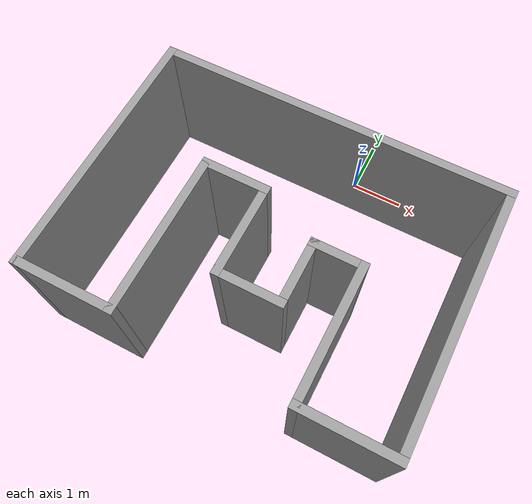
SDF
<?xml version='1.0'?>
<sdf version='1.7'>
  <model name='house1'>
    <pose>-0.545 -2.5575 0 0 -0 0</pose>
    <link name='Wall_0'>
      <collision name='Wall_0_Collision'>
        <geometry>
          <box>
            <size>4.75 0.15 2.5</size>
          </box>
        </geometry>
        <pose>0 0 1.25 0 -0 0</pose>
      </collision>
      <visual name='Wall_0_Visual'>
        <pose>0 0 1.25 0 -0 0</pose>
        <geometry>
          <box>
            <size>4.75 0.15 2.5</size>
          </box>
        </geometry>
        <material>
          <script>
            <uri>file://media/materials/scripts/gazebo.material</uri>
            <name>Gazebo/Grey</name>
          </script>
          <ambient>1 1 1 1</ambient>
        </material>
        <meta>
          <layer>0</layer>
        </meta>
      </visual>
      <pose>-3.175 -0.1825 0 0 -0 1.5708</pose>
    </link>
    <link name='Wall_1'>
      <collision name='Wall_1_Collision'>
        <geometry>
          <box>
            <size>6.5 0.15 2.5</size>
          </box>
        </geometry>
        <pose>0 0 1.25 0 -0 0</pose>
      </collision>
      <visual name='Wall_1_Visual'>
        <pose>0 0 1.25 0 -0 0</pose>
        <geometry>
          <box>
            <size>6.5 0.15 2.5</size>
          </box>
        </geometry>
        <material>
          <script>
            <uri>file://media/materials/scripts/gazebo.material</uri>
            <name>Gazebo/Grey</name>
          </script>
          <ambient>1 1 1 1</ambient>
        </material>
        <meta>
          <layer>0</layer>
        </meta>
      </visual>
      <pose>-0 2.1175 0 0 -0 0</pose>
    </link>
    <link name='Wall_10'>
      <collision name='Wall_10_Collision'>
        <geometry>
          <box>
            <size>3 0.15 2.5</size>
          </box>
        </geometry>
        <pose>0 0 1.25 0 -0 0</pose>
      </collision>
      <visual name='Wall_10_Visual'>
        <pose>0 0 1.25 0 -0 0</pose>
        <geometry>
          <box>
            <size>3 0.15 2.5</size>
          </box>
        </geometry>
        <material>
          <script>
            <uri>file://media/materials/scripts/gazebo.material</uri>
            <name>Gazebo/Grey</name>
          </script>
          <ambient>1 1 1 1</ambient>
        </material>
        <meta>
          <layer>0</layer>
        </meta>
      </visual>
      <pose>-1.475 -1.0575 0 0 -0 -1.5708</pose>
    </link>
    <link name='Wall_11'>
      <collision name='Wall_11_Collision'>
        <geometry>
          <box>
            <size>1.85 0.15 2.5</size>
          </box>
        </geometry>
        <pose>0 0 1.25 0 -0 0</pose>
      </collision>
      <visual name='Wall_11_Visual'>
        <pose>0 0 1.25 0 -0 0</pose>
        <geometry>
          <box>
            <size>1.85 0.15 2.5</size>
          </box>
        </geometry>
        <material>
          <script>
            <uri>file://media/materials/scripts/gazebo.material</uri>
            <name>Gazebo/Grey</name>
          </script>
          <ambient>1 1 1 1</ambient>
        </material>
        <meta>
          <layer>0</layer>
        </meta>
      </visual>
      <pose>-2.325 -2.4825 0 0 -0 3.14159</pose>
    </link>
    <link name='Wall_2'>
      <collision name='Wall_2_Collision'>
        <geometry>
          <box>
            <size>4.75 0.15 2.5</size>
          </box>
        </geometry>
        <pose>0 0 1.25 0 -0 0</pose>
      </collision>
      <visual name='Wall_2_Visual'>
        <pose>0 0 1.25 0 -0 0</pose>
        <geometry>
          <box>
            <size>4.75 0.15 2.5</size>
          </box>
        </geometry>
        <material>
          <script>
            <uri>file://media/materials/scripts/gazebo.material</uri>
            <name>Gazebo/Grey</name>
          </script>
          <ambient>1 1 1 1</ambient>
        </material>
        <meta>
          <layer>0</layer>
        </meta>
      </visual>
      <pose>3.175 -0.1825 0 0 -0 -1.5708</pose>
    </link>
    <link name='Wall_3'>
      <collision name='Wall_3_Collision'>
        <geometry>
          <box>
            <size>1.75 0.15 2.5</size>
          </box>
        </geometry>
        <pose>0 0 1.25 0 -0 0</pose>
      </collision>
      <visual name='Wall_3_Visual'>
        <pose>0 0 1.25 0 -0 0</pose>
        <geometry>
          <box>
            <size>1.75 0.15 2.5</size>
          </box>
        </geometry>
        <material>
          <script>
            <uri>file://media/materials/scripts/gazebo.material</uri>
            <name>Gazebo/Grey</name>
          </script>
          <ambient>1 1 1 1</ambient>
        </material>
        <meta>
          <layer>0</layer>
        </meta>
      </visual>
      <pose>2.375 -2.4825 0 0 -0 3.14159</pose>
    </link>
    <link name='Wall_4'>
      <collision name='Wall_4_Collision'>
        <geometry>
          <box>
            <size>2.5 0.15 2.5</size>
          </box>
        </geometry>
        <pose>0 0 1.25 0 -0 0</pose>
      </collision>
      <visual name='Wall_4_Visual'>
        <pose>0 0 1.25 0 -0 0</pose>
        <geometry>
          <box>
            <size>2.5 0.15 2.5</size>
          </box>
        </geometry>
        <material>
          <script>
            <uri>file://media/materials/scripts/gazebo.material</uri>
            <name>Gazebo/Grey</name>
          </script>
          <ambient>1 1 1 1</ambient>
        </material>
        <meta>
          <layer>0</layer>
        </meta>
      </visual>
      <pose>1.575 -1.3075 0 0 -0 1.5708</pose>
    </link>
    <link name='Wall_5'>
      <collision name='Wall_5_Collision'>
        <geometry>
          <box>
            <size>1 0.15 2.5</size>
          </box>
        </geometry>
        <pose>0 0 1.25 0 -0 0</pose>
      </collision>
      <visual name='Wall_5_Visual'>
        <pose>0 0 1.25 0 -0 0</pose>
        <geometry>
          <box>
            <size>1 0.15 2.5</size>
          </box>
        </geometry>
        <material>
          <script>
            <uri>file://media/materials/scripts/gazebo.material</uri>
            <name>Gazebo/Grey</name>
          </script>
          <ambient>1 1 1 1</ambient>
        </material>
        <meta>
          <layer>0</layer>
        </meta>
      </visual>
      <pose>1.15 -0.1325 0 0 -0 3.14159</pose>
    </link>
    <link name='Wall_6'>
      <collision name='Wall_6_Collision'>
        <geometry>
          <box>
            <size>1.25 0.15 2.5</size>
          </box>
        </geometry>
        <pose>0 0 1.25 0 -0 0</pose>
      </collision>
      <visual name='Wall_6_Visual'>
        <pose>0 0 1.25 0 -0 0</pose>
        <geometry>
          <box>
            <size>1.25 0.15 2.5</size>
          </box>
        </geometry>
        <material>
          <script>
            <uri>file://media/materials/scripts/gazebo.material</uri>
            <name>Gazebo/Grey</name>
          </script>
          <ambient>1 1 1 1</ambient>
        </material>
        <meta>
          <layer>0</layer>
        </meta>
      </visual>
      <pose>0.725 -0.6825 0 0 -0 -1.5708</pose>
    </link>
    <link name='Wall_7'>
      <collision name='Wall_7_Collision'>
        <geometry>
          <box>
            <size>1.25 0.15 2.5</size>
          </box>
        </geometry>
        <pose>0 0 1.25 0 -0 0</pose>
      </collision>
      <visual name='Wall_7_Visual'>
        <pose>0 0 1.25 0 -0 0</pose>
        <geometry>
          <box>
            <size>1.25 0.15 2.5</size>
          </box>
        </geometry>
        <material>
          <script>
            <uri>file://media/materials/scripts/gazebo.material</uri>
            <name>Gazebo/Grey</name>
          </script>
          <ambient>1 1 1 1</ambient>
        </material>
        <meta>
          <layer>0</layer>
        </meta>
      </visual>
      <pose>0.175 -1.2325 0 0 -0 3.14159</pose>
    </link>
    <link name='Wall_8'>
      <collision name='Wall_8_Collision'>
        <geometry>
          <box>
            <size>1.75 0.15 2.5</size>
          </box>
        </geometry>
        <pose>0 0 1.25 0 -0 0</pose>
      </collision>
      <visual name='Wall_8_Visual'>
        <pose>0 0 1.25 0 -0 0</pose>
        <geometry>
          <box>
            <size>1.75 0.15 2.5</size>
          </box>
        </geometry>
        <material>
          <script>
            <uri>file://media/materials/scripts/gazebo.material</uri>
            <name>Gazebo/Grey</name>
          </script>
          <ambient>1 1 1 1</ambient>
        </material>
        <meta>
          <layer>0</layer>
        </meta>
      </visual>
      <pose>-0.375 -0.4325 0 0 -0 1.5708</pose>
    </link>
    <link name='Wall_9'>
      <collision name='Wall_9_Collision'>
        <geometry>
          <box>
            <size>1.25 0.15 2.5</size>
          </box>
        </geometry>
        <pose>0 0 1.25 0 -0 0</pose>
      </collision>
      <visual name='Wall_9_Visual'>
        <pose>0 0 1.25 0 -0 0</pose>
        <geometry>
          <box>
            <size>1.25 0.15 2.5</size>
          </box>
        </geometry>
        <material>
          <script>
            <uri>file://media/materials/scripts/gazebo.material</uri>
            <name>Gazebo/Grey</name>
          </script>
          <ambient>1 1 1 1</ambient>
        </material>
        <meta>
          <layer>0</layer>
        </meta>
      </visual>
      <pose>-0.925 0.3675 0 0 -0 3.14159</pose>
    </link>
    <static>1</static>
  </model>
</sdf>
